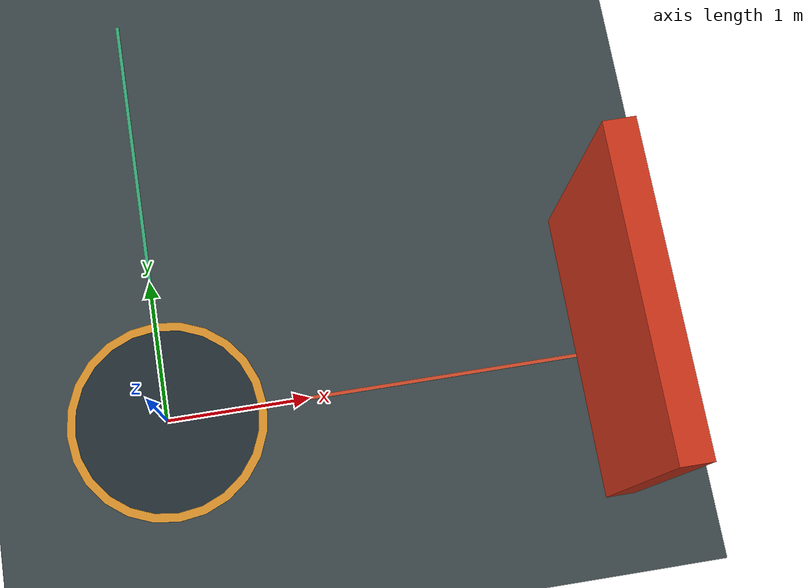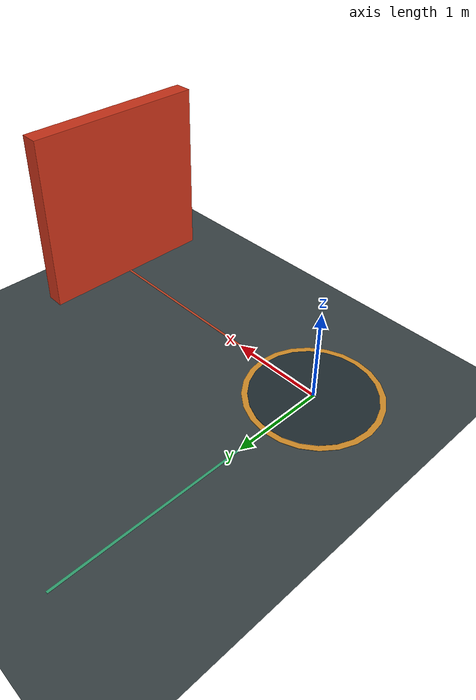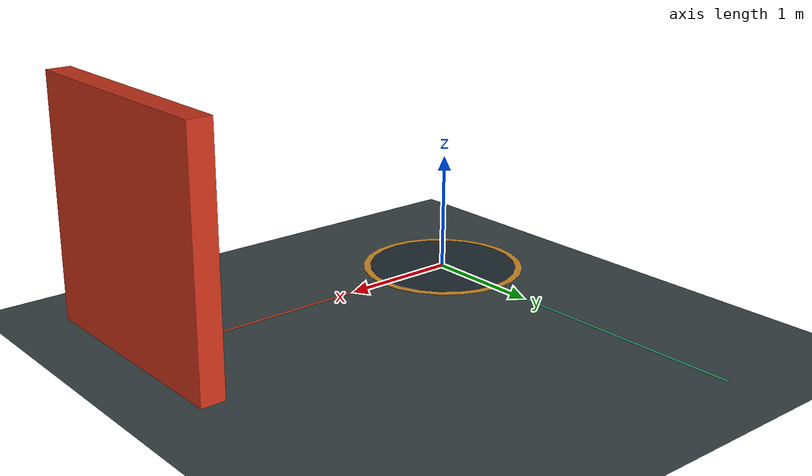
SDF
<sdf version="1.9">
 <world name="icarus_sensor_validation">
  <gravity>0 0 -9.80665</gravity>
  <physics name="lockstep_1ms" type="ignored">
   <max_step_size>0.001</max_step_size>
   <real_time_factor>1</real_time_factor>
  </physics>
  <plugin filename="gz-sim-physics-system" name="gz::sim::systems::Physics"/>
  <plugin filename="gz-sim-user-commands-system" name="gz::sim::systems::UserCommands"/>
  <plugin filename="gz-sim-scene-broadcaster-system" name="gz::sim::systems::SceneBroadcaster"/>
  <plugin filename="gz-sim-imu-system" name="gz::sim::systems::Imu"/>
  <scene><ambient>0.65 0.65 0.65</ambient><background>0.55 0.66 0.76</background><shadows>true</shadows></scene>
  <spherical_coordinates>
   <surface_model>EARTH_WGS84</surface_model>
   <latitude_deg>-35.363262</latitude_deg>
   <longitude_deg>149.165237</longitude_deg>
   <elevation>584</elevation>
   <heading_deg>0</heading_deg>
  </spherical_coordinates>
  <light name="sun" type="directional">
   <pose>0 0 10 0 0 0</pose>
   <diffuse>0.9 0.85 0.78 1</diffuse>
   <specular>0.2 0.2 0.2 1</specular>
   <direction>-0.5 0.3 -0.9</direction>
  </light>
  <model name="test_pad">
   <static>true</static>
   <link name="ground">
    <collision name="ground_collision">
     <geometry><plane><normal>0 0 1</normal><size>100 100</size></plane></geometry>
    </collision>
    <visual name="ground">
     <geometry><plane><normal>0 0 1</normal><size>100 100</size></plane></geometry>
     <material><ambient>0.23 0.27 0.28 1</ambient><diffuse>0.23 0.27 0.28 1</diffuse></material>
    </visual>
    <visual name="pad">
     <pose>0 0 0.003 0 0 0</pose>
     <geometry><cylinder><radius>0.7</radius><length>0.004</length></cylinder></geometry>
     <material><diffuse>0.85 0.57 0.16 1</diffuse></material>
    </visual>
    <visual name="pad_inner">
     <pose>0 0 0.006 0 0 0</pose>
     <geometry><cylinder><radius>0.64</radius><length>0.004</length></cylinder></geometry>
     <material><diffuse>0.13 0.18 0.20 1</diffuse></material>
    </visual>
    <visual name="east">
     <pose>2 0 0.003 0 0 0</pose>
     <geometry><box><size>2 0.025 0.003</size></box></geometry>
     <material><diffuse>0.8 0.28 0.15 1</diffuse></material>
    </visual>
    <visual name="north">
     <pose>0 2 0.003 0 0 0</pose>
     <geometry><box><size>0.025 2 0.003</size></box></geometry>
     <material><diffuse>0.2 0.65 0.45 1</diffuse></material>
    </visual>
   </link>
  </model>
  <plugin filename="gz-sim-sensors-system" name="gz::sim::systems::Sensors">
   <render_engine>ogre2</render_engine>
  </plugin>
  <plugin filename="gz-sim-navsat-system" name="gz::sim::systems::NavSat"/>
  <model name="sensor_target">
   <static>true</static>
   <pose>3 0 1 0 0 0</pose>
   <link name="target">
    <visual name="target">
     <geometry><box><size>0.2 2 2</size></box></geometry>
     <material><diffuse>0.8 0.2 0.1 1</diffuse></material>
    </visual>
    <collision name="target_collision"><geometry><box><size>0.2 2 2</size></box></geometry></collision>
   </link>
  </model>
 </world>
</sdf>
